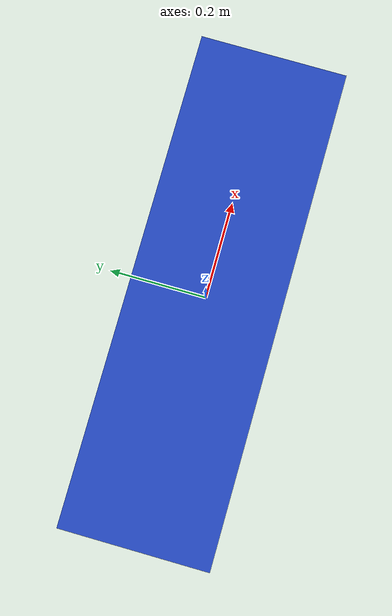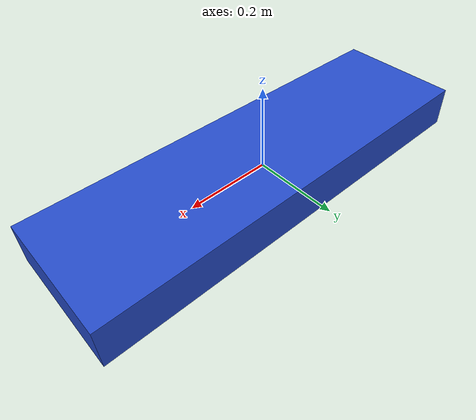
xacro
<?xml version="1.0"?>
<robot name="drone" xmlns:xacro="http://www.ros.org/wiki/xacro">

    <!-- Parameters for customization -->
<xacro:property name="drone_name" value="drone"/>
<xacro:property name="body_length" value="1.0"/>
<xacro:property name="body_width" value="0.3"/>
<xacro:property name="wing_length" value="1.5"/>
<xacro:property name="wing_thickness" value="0.05"/>

<!-- Base Link -->
<link name="${drone_name}_base_link">
    <visual>
        <geometry>
            <box size="${body_length} ${body_width} 0.1"/>
        </geometry>
        <material name="blue"/>
    </visual>
    <collision>
        <geometry>
            <box size="${body_length} ${body_width} 0.1"/>
        </geometry>
    </collision>
    <inertial>
        <mass value="1.0"/>
        <origin xyz="0 0 0"/>
        <inertia ixx="0.1" ixy="0.0" ixz="0.0" iyy="0.1" iyz="0.0" izz="0.1"/>
    </inertial>
</link>

</robot>
